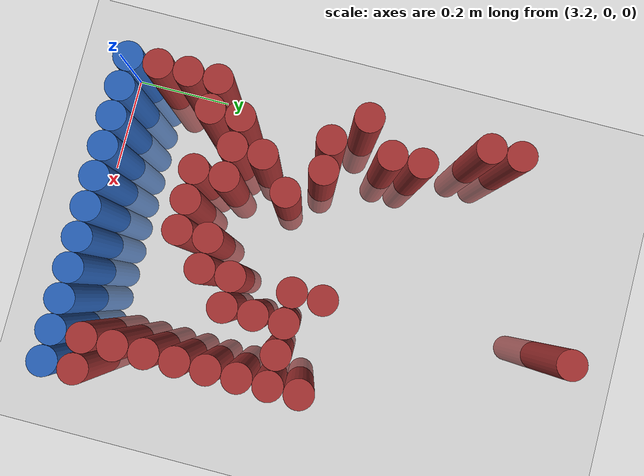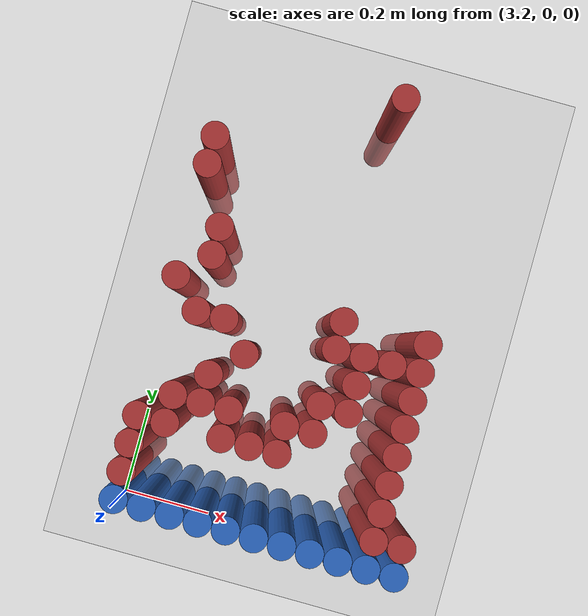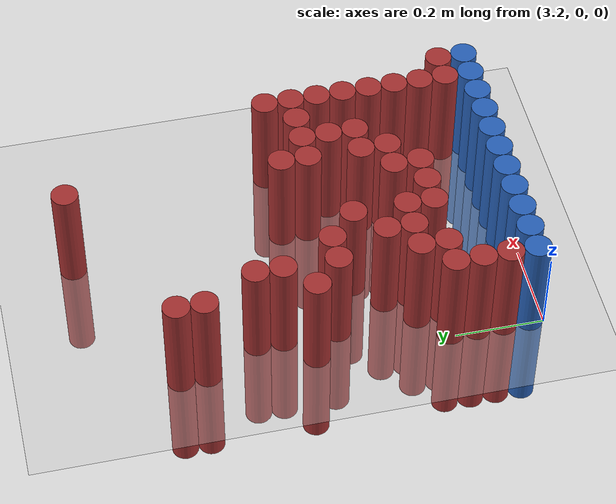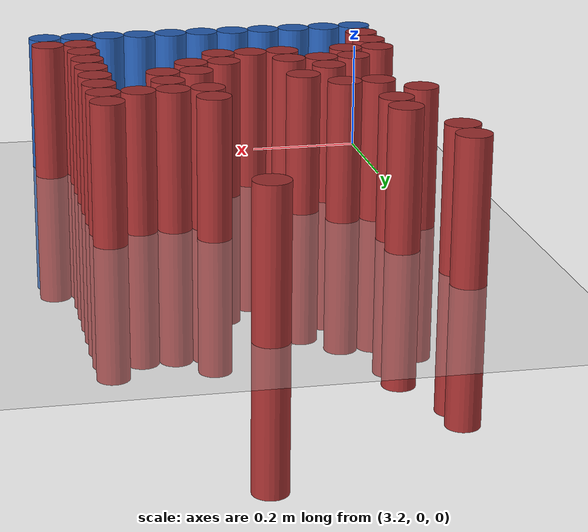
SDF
<sdf version="1.6">
 <world name="default">
  <model name="ground_plane">
   <static>1</static>
   <link name="link">
    <collision name="collision">
     <geometry><plane><normal>0 0 1</normal><size>100 100</size></plane></geometry>
     <surface><friction><ode><mu>100</mu><mu2>50</mu2></ode></friction></surface>
    </collision>
    <visual name="visual">
     <cast_shadows>0</cast_shadows>
     <geometry><plane><normal>0 0 1</normal><size>100 100</size></plane></geometry>
     <material>
      <script><uri>file://media/materials/scripts/gazebo.material</uri><name>Gazebo/Grey</name></script>
     </material>
    </visual>
   </link>
  </model>
  <model name="unit_cylinder_213">
   <static>1</static>
   <pose>3.570000 0.990000 0.000000 0.000000 0.000000 0.000000</pose>
   <link name="link">
    <inertial>
     <mass>1</mass>
     <inertia><ixx>0.145833</ixx><ixy>0</ixy><ixz>0</ixz><iyy>0.145833</iyy><iyz>0</iyz><izz>0.125</izz></inertia>
    </inertial>
    <collision name="collision">
     <geometry><cylinder><radius>0.030000</radius><length>0.5</length></cylinder></geometry>
    </collision>
    <visual name="visual">
     <geometry><cylinder><radius>0.030000</radius><length>0.5</length></cylinder></geometry>
     <material>
      <ambient>0.648000 0.192000 0.192000 1</ambient>
      <diffuse>0.648000 0.192000 0.192000 1</diffuse>
     </material>
     <material>
      <script><name>Gazebo/Grey</name><uri>file://media/materials/scripts/gazebo.material</uri></script>
     </material>
    </visual>
   </link>
  </model>
  <model name="unit_cylinder_217">
   <static>1</static>
   <pose>3.210000 0.810000 0.000000 0.000000 0.000000 0.000000</pose>
   <link name="link">
    <inertial>
     <mass>1</mass>
     <inertia><ixx>0.145833</ixx><ixy>0</ixy><ixz>0</ixz><iyy>0.145833</iyy><iyz>0</iyz><izz>0.125</izz></inertia>
    </inertial>
    <collision name="collision">
     <geometry><cylinder><radius>0.030000</radius><length>0.5</length></cylinder></geometry>
    </collision>
    <visual name="visual">
     <geometry><cylinder><radius>0.030000</radius><length>0.5</length></cylinder></geometry>
     <material>
      <ambient>0.648000 0.192000 0.192000 1</ambient>
      <diffuse>0.648000 0.192000 0.192000 1</diffuse>
     </material>
     <material>
      <script><name>Gazebo/Grey</name><uri>file://media/materials/scripts/gazebo.material</uri></script>
     </material>
    </visual>
   </link>
  </model>
  <model name="unit_cylinder_220">
   <static>1</static>
   <pose>3.210000 0.750000 0.000000 0.000000 0.000000 0.000000</pose>
   <link name="link">
    <inertial>
     <mass>1</mass>
     <inertia><ixx>0.145833</ixx><ixy>0</ixy><ixz>0</ixz><iyy>0.145833</iyy><iyz>0</iyz><izz>0.125</izz></inertia>
    </inertial>
    <collision name="collision">
     <geometry><cylinder><radius>0.030000</radius><length>0.5</length></cylinder></geometry>
    </collision>
    <visual name="visual">
     <geometry><cylinder><radius>0.030000</radius><length>0.5</length></cylinder></geometry>
     <material>
      <ambient>0.648000 0.192000 0.192000 1</ambient>
      <diffuse>0.648000 0.192000 0.192000 1</diffuse>
     </material>
     <material>
      <script><name>Gazebo/Grey</name><uri>file://media/materials/scripts/gazebo.material</uri></script>
     </material>
    </visual>
   </link>
  </model>
  <model name="unit_cylinder_235">
   <static>1</static>
   <pose>3.270000 0.630000 0.000000 0.000000 0.000000 0.000000</pose>
   <link name="link">
    <inertial>
     <mass>1</mass>
     <inertia><ixx>0.145833</ixx><ixy>0</ixy><ixz>0</ixz><iyy>0.145833</iyy><iyz>0</iyz><izz>0.125</izz></inertia>
    </inertial>
    <collision name="collision">
     <geometry><cylinder><radius>0.030000</radius><length>0.5</length></cylinder></geometry>
    </collision>
    <visual name="visual">
     <geometry><cylinder><radius>0.030000</radius><length>0.5</length></cylinder></geometry>
     <material>
      <ambient>0.648000 0.192000 0.192000 1</ambient>
      <diffuse>0.648000 0.192000 0.192000 1</diffuse>
     </material>
     <material>
      <script><name>Gazebo/Grey</name><uri>file://media/materials/scripts/gazebo.material</uri></script>
     </material>
    </visual>
   </link>
  </model>
  <model name="unit_cylinder_239">
   <static>1</static>
   <pose>3.270000 0.570000 0.000000 0.000000 0.000000 0.000000</pose>
   <link name="link">
    <inertial>
     <mass>1</mass>
     <inertia><ixx>0.145833</ixx><ixy>0</ixy><ixz>0</ixz><iyy>0.145833</iyy><iyz>0</iyz><izz>0.125</izz></inertia>
    </inertial>
    <collision name="collision">
     <geometry><cylinder><radius>0.030000</radius><length>0.5</length></cylinder></geometry>
    </collision>
    <visual name="visual">
     <geometry><cylinder><radius>0.030000</radius><length>0.5</length></cylinder></geometry>
     <material>
      <ambient>0.648000 0.192000 0.192000 1</ambient>
      <diffuse>0.648000 0.192000 0.192000 1</diffuse>
     </material>
     <material>
      <script><name>Gazebo/Grey</name><uri>file://media/materials/scripts/gazebo.material</uri></script>
     </material>
    </visual>
   </link>
  </model>
  <model name="unit_cylinder_249">
   <static>1</static>
   <pose>3.210000 0.510000 0.000000 0.000000 0.000000 0.000000</pose>
   <link name="link">
    <inertial>
     <mass>1</mass>
     <inertia><ixx>0.145833</ixx><ixy>0</ixy><ixz>0</ixz><iyy>0.145833</iyy><iyz>0</iyz><izz>0.125</izz></inertia>
    </inertial>
    <collision name="collision">
     <geometry><cylinder><radius>0.030000</radius><length>0.5</length></cylinder></geometry>
    </collision>
    <visual name="visual">
     <geometry><cylinder><radius>0.030000</radius><length>0.5</length></cylinder></geometry>
     <material>
      <ambient>0.648000 0.192000 0.192000 1</ambient>
      <diffuse>0.648000 0.192000 0.192000 1</diffuse>
     </material>
     <material>
      <script><name>Gazebo/Grey</name><uri>file://media/materials/scripts/gazebo.material</uri></script>
     </material>
    </visual>
   </link>
  </model>
  <model name="unit_cylinder_250">
   <static>1</static>
   <pose>3.570000 0.510000 0.000000 0.000000 0.000000 0.000000</pose>
   <link name="link">
    <inertial>
     <mass>1</mass>
     <inertia><ixx>0.145833</ixx><ixy>0</ixy><ixz>0</ixz><iyy>0.145833</iyy><iyz>0</iyz><izz>0.125</izz></inertia>
    </inertial>
    <collision name="collision">
     <geometry><cylinder><radius>0.030000</radius><length>0.5</length></cylinder></geometry>
    </collision>
    <visual name="visual">
     <geometry><cylinder><radius>0.030000</radius><length>0.5</length></cylinder></geometry>
     <material>
      <ambient>0.648000 0.192000 0.192000 1</ambient>
      <diffuse>0.648000 0.192000 0.192000 1</diffuse>
     </material>
     <material>
      <script><name>Gazebo/Grey</name><uri>file://media/materials/scripts/gazebo.material</uri></script>
     </material>
    </visual>
   </link>
  </model>
  <model name="unit_cylinder_251">
   <static>1</static>
   <pose>3.750000 0.510000 0.000000 0.000000 0.000000 0.000000</pose>
   <link name="link">
    <inertial>
     <mass>1</mass>
     <inertia><ixx>0.145833</ixx><ixy>0</ixy><ixz>0</ixz><iyy>0.145833</iyy><iyz>0</iyz><izz>0.125</izz></inertia>
    </inertial>
    <collision name="collision">
     <geometry><cylinder><radius>0.030000</radius><length>0.5</length></cylinder></geometry>
    </collision>
    <visual name="visual">
     <geometry><cylinder><radius>0.030000</radius><length>0.5</length></cylinder></geometry>
     <material>
      <ambient>0.648000 0.192000 0.192000 1</ambient>
      <diffuse>0.648000 0.192000 0.192000 1</diffuse>
     </material>
     <material>
      <script><name>Gazebo/Grey</name><uri>file://media/materials/scripts/gazebo.material</uri></script>
     </material>
    </visual>
   </link>
  </model>
  <model name="unit_cylinder_260">
   <static>1</static>
   <pose>3.270000 0.450000 0.000000 0.000000 0.000000 0.000000</pose>
   <link name="link">
    <inertial>
     <mass>1</mass>
     <inertia><ixx>0.145833</ixx><ixy>0</ixy><ixz>0</ixz><iyy>0.145833</iyy><iyz>0</iyz><izz>0.125</izz></inertia>
    </inertial>
    <collision name="collision">
     <geometry><cylinder><radius>0.030000</radius><length>0.5</length></cylinder></geometry>
    </collision>
    <visual name="visual">
     <geometry><cylinder><radius>0.030000</radius><length>0.5</length></cylinder></geometry>
     <material>
      <ambient>0.648000 0.192000 0.192000 1</ambient>
      <diffuse>0.648000 0.192000 0.192000 1</diffuse>
     </material>
     <material>
      <script><name>Gazebo/Grey</name><uri>file://media/materials/scripts/gazebo.material</uri></script>
     </material>
    </visual>
   </link>
  </model>
  <model name="unit_cylinder_261">
   <static>1</static>
   <pose>3.330000 0.450000 0.000000 0.000000 0.000000 0.000000</pose>
   <link name="link">
    <inertial>
     <mass>1</mass>
     <inertia><ixx>0.145833</ixx><ixy>0</ixy><ixz>0</ixz><iyy>0.145833</iyy><iyz>0</iyz><izz>0.125</izz></inertia>
    </inertial>
    <collision name="collision">
     <geometry><cylinder><radius>0.030000</radius><length>0.5</length></cylinder></geometry>
    </collision>
    <visual name="visual">
     <geometry><cylinder><radius>0.030000</radius><length>0.5</length></cylinder></geometry>
     <material>
      <ambient>0.648000 0.192000 0.192000 1</ambient>
      <diffuse>0.648000 0.192000 0.192000 1</diffuse>
     </material>
     <material>
      <script><name>Gazebo/Grey</name><uri>file://media/materials/scripts/gazebo.material</uri></script>
     </material>
    </visual>
   </link>
  </model>
  <model name="unit_cylinder_262">
   <static>1</static>
   <pose>3.570000 0.450000 0.000000 0.000000 0.000000 0.000000</pose>
   <link name="link">
    <inertial>
     <mass>1</mass>
     <inertia><ixx>0.145833</ixx><ixy>0</ixy><ixz>0</ixz><iyy>0.145833</iyy><iyz>0</iyz><izz>0.125</izz></inertia>
    </inertial>
    <collision name="collision">
     <geometry><cylinder><radius>0.030000</radius><length>0.5</length></cylinder></geometry>
    </collision>
    <visual name="visual">
     <geometry><cylinder><radius>0.030000</radius><length>0.5</length></cylinder></geometry>
     <material>
      <ambient>0.648000 0.192000 0.192000 1</ambient>
      <diffuse>0.648000 0.192000 0.192000 1</diffuse>
     </material>
     <material>
      <script><name>Gazebo/Grey</name><uri>file://media/materials/scripts/gazebo.material</uri></script>
     </material>
    </visual>
   </link>
  </model>
  <model name="unit_cylinder_263">
   <static>1</static>
   <pose>3.630000 0.450000 0.000000 0.000000 0.000000 0.000000</pose>
   <link name="link">
    <inertial>
     <mass>1</mass>
     <inertia><ixx>0.145833</ixx><ixy>0</ixy><ixz>0</ixz><iyy>0.145833</iyy><iyz>0</iyz><izz>0.125</izz></inertia>
    </inertial>
    <collision name="collision">
     <geometry><cylinder><radius>0.030000</radius><length>0.5</length></cylinder></geometry>
    </collision>
    <visual name="visual">
     <geometry><cylinder><radius>0.030000</radius><length>0.5</length></cylinder></geometry>
     <material>
      <ambient>0.648000 0.192000 0.192000 1</ambient>
      <diffuse>0.648000 0.192000 0.192000 1</diffuse>
     </material>
     <material>
      <script><name>Gazebo/Grey</name><uri>file://media/materials/scripts/gazebo.material</uri></script>
     </material>
    </visual>
   </link>
  </model>
  <model name="unit_cylinder_264">
   <static>1</static>
   <pose>3.690000 0.450000 0.000000 0.000000 0.000000 0.000000</pose>
   <link name="link">
    <inertial>
     <mass>1</mass>
     <inertia><ixx>0.145833</ixx><ixy>0</ixy><ixz>0</ixz><iyy>0.145833</iyy><iyz>0</iyz><izz>0.125</izz></inertia>
    </inertial>
    <collision name="collision">
     <geometry><cylinder><radius>0.030000</radius><length>0.5</length></cylinder></geometry>
    </collision>
    <visual name="visual">
     <geometry><cylinder><radius>0.030000</radius><length>0.5</length></cylinder></geometry>
     <material>
      <ambient>0.648000 0.192000 0.192000 1</ambient>
      <diffuse>0.648000 0.192000 0.192000 1</diffuse>
     </material>
     <material>
      <script><name>Gazebo/Grey</name><uri>file://media/materials/scripts/gazebo.material</uri></script>
     </material>
    </visual>
   </link>
  </model>
  <model name="unit_cylinder_265">
   <static>1</static>
   <pose>3.750000 0.450000 0.000000 0.000000 0.000000 0.000000</pose>
   <link name="link">
    <inertial>
     <mass>1</mass>
     <inertia><ixx>0.145833</ixx><ixy>0</ixy><ixz>0</ixz><iyy>0.145833</iyy><iyz>0</iyz><izz>0.125</izz></inertia>
    </inertial>
    <collision name="collision">
     <geometry><cylinder><radius>0.030000</radius><length>0.5</length></cylinder></geometry>
    </collision>
    <visual name="visual">
     <geometry><cylinder><radius>0.030000</radius><length>0.5</length></cylinder></geometry>
     <material>
      <ambient>0.648000 0.192000 0.192000 1</ambient>
      <diffuse>0.648000 0.192000 0.192000 1</diffuse>
     </material>
     <material>
      <script><name>Gazebo/Grey</name><uri>file://media/materials/scripts/gazebo.material</uri></script>
     </material>
    </visual>
   </link>
  </model>
  <model name="unit_cylinder_269">
   <static>1</static>
   <pose>3.390000 0.390000 0.000000 0.000000 0.000000 0.000000</pose>
   <link name="link">
    <inertial>
     <mass>1</mass>
     <inertia><ixx>0.145833</ixx><ixy>0</ixy><ixz>0</ixz><iyy>0.145833</iyy><iyz>0</iyz><izz>0.125</izz></inertia>
    </inertial>
    <collision name="collision">
     <geometry><cylinder><radius>0.030000</radius><length>0.5</length></cylinder></geometry>
    </collision>
    <visual name="visual">
     <geometry><cylinder><radius>0.030000</radius><length>0.5</length></cylinder></geometry>
     <material>
      <ambient>0.648000 0.192000 0.192000 1</ambient>
      <diffuse>0.648000 0.192000 0.192000 1</diffuse>
     </material>
     <material>
      <script><name>Gazebo/Grey</name><uri>file://media/materials/scripts/gazebo.material</uri></script>
     </material>
    </visual>
   </link>
  </model>
  <model name="unit_cylinder_270">
   <static>1</static>
   <pose>3.630000 0.390000 0.000000 0.000000 0.000000 0.000000</pose>
   <link name="link">
    <inertial>
     <mass>1</mass>
     <inertia><ixx>0.145833</ixx><ixy>0</ixy><ixz>0</ixz><iyy>0.145833</iyy><iyz>0</iyz><izz>0.125</izz></inertia>
    </inertial>
    <collision name="collision">
     <geometry><cylinder><radius>0.030000</radius><length>0.5</length></cylinder></geometry>
    </collision>
    <visual name="visual">
     <geometry><cylinder><radius>0.030000</radius><length>0.5</length></cylinder></geometry>
     <material>
      <ambient>0.648000 0.192000 0.192000 1</ambient>
      <diffuse>0.648000 0.192000 0.192000 1</diffuse>
     </material>
     <material>
      <script><name>Gazebo/Grey</name><uri>file://media/materials/scripts/gazebo.material</uri></script>
     </material>
    </visual>
   </link>
  </model>
  <model name="unit_cylinder_271">
   <static>1</static>
   <pose>3.750000 0.390000 0.000000 0.000000 0.000000 0.000000</pose>
   <link name="link">
    <inertial>
     <mass>1</mass>
     <inertia><ixx>0.145833</ixx><ixy>0</ixy><ixz>0</ixz><iyy>0.145833</iyy><iyz>0</iyz><izz>0.125</izz></inertia>
    </inertial>
    <collision name="collision">
     <geometry><cylinder><radius>0.030000</radius><length>0.5</length></cylinder></geometry>
    </collision>
    <visual name="visual">
     <geometry><cylinder><radius>0.030000</radius><length>0.5</length></cylinder></geometry>
     <material>
      <ambient>0.648000 0.192000 0.192000 1</ambient>
      <diffuse>0.648000 0.192000 0.192000 1</diffuse>
     </material>
     <material>
      <script><name>Gazebo/Grey</name><uri>file://media/materials/scripts/gazebo.material</uri></script>
     </material>
    </visual>
   </link>
  </model>
  <model name="unit_cylinder_274">
   <static>1</static>
   <pose>3.330000 0.330000 0.000000 0.000000 0.000000 0.000000</pose>
   <link name="link">
    <inertial>
     <mass>1</mass>
     <inertia><ixx>0.145833</ixx><ixy>0</ixy><ixz>0</ixz><iyy>0.145833</iyy><iyz>0</iyz><izz>0.125</izz></inertia>
    </inertial>
    <collision name="collision">
     <geometry><cylinder><radius>0.030000</radius><length>0.5</length></cylinder></geometry>
    </collision>
    <visual name="visual">
     <geometry><cylinder><radius>0.030000</radius><length>0.5</length></cylinder></geometry>
     <material>
      <ambient>0.648000 0.192000 0.192000 1</ambient>
      <diffuse>0.648000 0.192000 0.192000 1</diffuse>
     </material>
     <material>
      <script><name>Gazebo/Grey</name><uri>file://media/materials/scripts/gazebo.material</uri></script>
     </material>
    </visual>
   </link>
  </model>
  <model name="unit_cylinder_275">
   <static>1</static>
   <pose>3.570000 0.330000 0.000000 0.000000 0.000000 0.000000</pose>
   <link name="link">
    <inertial>
     <mass>1</mass>
     <inertia><ixx>0.145833</ixx><ixy>0</ixy><ixz>0</ixz><iyy>0.145833</iyy><iyz>0</iyz><izz>0.125</izz></inertia>
    </inertial>
    <collision name="collision">
     <geometry><cylinder><radius>0.030000</radius><length>0.5</length></cylinder></geometry>
    </collision>
    <visual name="visual">
     <geometry><cylinder><radius>0.030000</radius><length>0.5</length></cylinder></geometry>
     <material>
      <ambient>0.648000 0.192000 0.192000 1</ambient>
      <diffuse>0.648000 0.192000 0.192000 1</diffuse>
     </material>
     <material>
      <script><name>Gazebo/Grey</name><uri>file://media/materials/scripts/gazebo.material</uri></script>
     </material>
    </visual>
   </link>
  </model>
  <model name="unit_cylinder_276">
   <static>1</static>
   <pose>3.630000 0.330000 0.000000 0.000000 0.000000 0.000000</pose>
   <link name="link">
    <inertial>
     <mass>1</mass>
     <inertia><ixx>0.145833</ixx><ixy>0</ixy><ixz>0</ixz><iyy>0.145833</iyy><iyz>0</iyz><izz>0.125</izz></inertia>
    </inertial>
    <collision name="collision">
     <geometry><cylinder><radius>0.030000</radius><length>0.5</length></cylinder></geometry>
    </collision>
    <visual name="visual">
     <geometry><cylinder><radius>0.030000</radius><length>0.5</length></cylinder></geometry>
     <material>
      <ambient>0.648000 0.192000 0.192000 1</ambient>
      <diffuse>0.648000 0.192000 0.192000 1</diffuse>
     </material>
     <material>
      <script><name>Gazebo/Grey</name><uri>file://media/materials/scripts/gazebo.material</uri></script>
     </material>
    </visual>
   </link>
  </model>
  <model name="unit_cylinder_277">
   <static>1</static>
   <pose>3.750000 0.330000 0.000000 0.000000 0.000000 0.000000</pose>
   <link name="link">
    <inertial>
     <mass>1</mass>
     <inertia><ixx>0.145833</ixx><ixy>0</ixy><ixz>0</ixz><iyy>0.145833</iyy><iyz>0</iyz><izz>0.125</izz></inertia>
    </inertial>
    <collision name="collision">
     <geometry><cylinder><radius>0.030000</radius><length>0.5</length></cylinder></geometry>
    </collision>
    <visual name="visual">
     <geometry><cylinder><radius>0.030000</radius><length>0.5</length></cylinder></geometry>
     <material>
      <ambient>0.648000 0.192000 0.192000 1</ambient>
      <diffuse>0.648000 0.192000 0.192000 1</diffuse>
     </material>
     <material>
      <script><name>Gazebo/Grey</name><uri>file://media/materials/scripts/gazebo.material</uri></script>
     </material>
    </visual>
   </link>
  </model>
  <model name="unit_cylinder_280">
   <static>1</static>
   <pose>3.270000 0.270000 0.000000 0.000000 0.000000 0.000000</pose>
   <link name="link">
    <inertial>
     <mass>1</mass>
     <inertia><ixx>0.145833</ixx><ixy>0</ixy><ixz>0</ixz><iyy>0.145833</iyy><iyz>0</iyz><izz>0.125</izz></inertia>
    </inertial>
    <collision name="collision">
     <geometry><cylinder><radius>0.030000</radius><length>0.5</length></cylinder></geometry>
    </collision>
    <visual name="visual">
     <geometry><cylinder><radius>0.030000</radius><length>0.5</length></cylinder></geometry>
     <material>
      <ambient>0.648000 0.192000 0.192000 1</ambient>
      <diffuse>0.648000 0.192000 0.192000 1</diffuse>
     </material>
     <material>
      <script><name>Gazebo/Grey</name><uri>file://media/materials/scripts/gazebo.material</uri></script>
     </material>
    </visual>
   </link>
  </model>
  <model name="unit_cylinder_281">
   <static>1</static>
   <pose>3.330000 0.270000 0.000000 0.000000 0.000000 0.000000</pose>
   <link name="link">
    <inertial>
     <mass>1</mass>
     <inertia><ixx>0.145833</ixx><ixy>0</ixy><ixz>0</ixz><iyy>0.145833</iyy><iyz>0</iyz><izz>0.125</izz></inertia>
    </inertial>
    <collision name="collision">
     <geometry><cylinder><radius>0.030000</radius><length>0.5</length></cylinder></geometry>
    </collision>
    <visual name="visual">
     <geometry><cylinder><radius>0.030000</radius><length>0.5</length></cylinder></geometry>
     <material>
      <ambient>0.648000 0.192000 0.192000 1</ambient>
      <diffuse>0.648000 0.192000 0.192000 1</diffuse>
     </material>
     <material>
      <script><name>Gazebo/Grey</name><uri>file://media/materials/scripts/gazebo.material</uri></script>
     </material>
    </visual>
   </link>
  </model>
  <model name="unit_cylinder_282">
   <static>1</static>
   <pose>3.390000 0.270000 0.000000 0.000000 0.000000 0.000000</pose>
   <link name="link">
    <inertial>
     <mass>1</mass>
     <inertia><ixx>0.145833</ixx><ixy>0</ixy><ixz>0</ixz><iyy>0.145833</iyy><iyz>0</iyz><izz>0.125</izz></inertia>
    </inertial>
    <collision name="collision">
     <geometry><cylinder><radius>0.030000</radius><length>0.5</length></cylinder></geometry>
    </collision>
    <visual name="visual">
     <geometry><cylinder><radius>0.030000</radius><length>0.5</length></cylinder></geometry>
     <material>
      <ambient>0.648000 0.192000 0.192000 1</ambient>
      <diffuse>0.648000 0.192000 0.192000 1</diffuse>
     </material>
     <material>
      <script><name>Gazebo/Grey</name><uri>file://media/materials/scripts/gazebo.material</uri></script>
     </material>
    </visual>
   </link>
  </model>
  <model name="unit_cylinder_283">
   <static>1</static>
   <pose>3.510000 0.270000 0.000000 0.000000 0.000000 0.000000</pose>
   <link name="link">
    <inertial>
     <mass>1</mass>
     <inertia><ixx>0.145833</ixx><ixy>0</ixy><ixz>0</ixz><iyy>0.145833</iyy><iyz>0</iyz><izz>0.125</izz></inertia>
    </inertial>
    <collision name="collision">
     <geometry><cylinder><radius>0.030000</radius><length>0.5</length></cylinder></geometry>
    </collision>
    <visual name="visual">
     <geometry><cylinder><radius>0.030000</radius><length>0.5</length></cylinder></geometry>
     <material>
      <ambient>0.648000 0.192000 0.192000 1</ambient>
      <diffuse>0.648000 0.192000 0.192000 1</diffuse>
     </material>
     <material>
      <script><name>Gazebo/Grey</name><uri>file://media/materials/scripts/gazebo.material</uri></script>
     </material>
    </visual>
   </link>
  </model>
  <model name="unit_cylinder_284">
   <static>1</static>
   <pose>3.570000 0.270000 0.000000 0.000000 0.000000 0.000000</pose>
   <link name="link">
    <inertial>
     <mass>1</mass>
     <inertia><ixx>0.145833</ixx><ixy>0</ixy><ixz>0</ixz><iyy>0.145833</iyy><iyz>0</iyz><izz>0.125</izz></inertia>
    </inertial>
    <collision name="collision">
     <geometry><cylinder><radius>0.030000</radius><length>0.5</length></cylinder></geometry>
    </collision>
    <visual name="visual">
     <geometry><cylinder><radius>0.030000</radius><length>0.5</length></cylinder></geometry>
     <material>
      <ambient>0.648000 0.192000 0.192000 1</ambient>
      <diffuse>0.648000 0.192000 0.192000 1</diffuse>
     </material>
     <material>
      <script><name>Gazebo/Grey</name><uri>file://media/materials/scripts/gazebo.material</uri></script>
     </material>
    </visual>
   </link>
  </model>
  <model name="unit_cylinder_285">
   <static>1</static>
   <pose>3.750000 0.270000 0.000000 0.000000 0.000000 0.000000</pose>
   <link name="link">
    <inertial>
     <mass>1</mass>
     <inertia><ixx>0.145833</ixx><ixy>0</ixy><ixz>0</ixz><iyy>0.145833</iyy><iyz>0</iyz><izz>0.125</izz></inertia>
    </inertial>
    <collision name="collision">
     <geometry><cylinder><radius>0.030000</radius><length>0.5</length></cylinder></geometry>
    </collision>
    <visual name="visual">
     <geometry><cylinder><radius>0.030000</radius><length>0.5</length></cylinder></geometry>
     <material>
      <ambient>0.648000 0.192000 0.192000 1</ambient>
      <diffuse>0.648000 0.192000 0.192000 1</diffuse>
     </material>
     <material>
      <script><name>Gazebo/Grey</name><uri>file://media/materials/scripts/gazebo.material</uri></script>
     </material>
    </visual>
   </link>
  </model>
  <model name="unit_cylinder_286">
   <static>1</static>
   <pose>3.210000 0.210000 0.000000 0.000000 0.000000 0.000000</pose>
   <link name="link">
    <inertial>
     <mass>1</mass>
     <inertia><ixx>0.145833</ixx><ixy>0</ixy><ixz>0</ixz><iyy>0.145833</iyy><iyz>0</iyz><izz>0.125</izz></inertia>
    </inertial>
    <collision name="collision">
     <geometry><cylinder><radius>0.030000</radius><length>0.5</length></cylinder></geometry>
    </collision>
    <visual name="visual">
     <geometry><cylinder><radius>0.030000</radius><length>0.5</length></cylinder></geometry>
     <material>
      <ambient>0.648000 0.192000 0.192000 1</ambient>
      <diffuse>0.648000 0.192000 0.192000 1</diffuse>
     </material>
     <material>
      <script><name>Gazebo/Grey</name><uri>file://media/materials/scripts/gazebo.material</uri></script>
     </material>
    </visual>
   </link>
  </model>
  <model name="unit_cylinder_287">
   <static>1</static>
   <pose>3.270000 0.210000 0.000000 0.000000 0.000000 0.000000</pose>
   <link name="link">
    <inertial>
     <mass>1</mass>
     <inertia><ixx>0.145833</ixx><ixy>0</ixy><ixz>0</ixz><iyy>0.145833</iyy><iyz>0</iyz><izz>0.125</izz></inertia>
    </inertial>
    <collision name="collision">
     <geometry><cylinder><radius>0.030000</radius><length>0.5</length></cylinder></geometry>
    </collision>
    <visual name="visual">
     <geometry><cylinder><radius>0.030000</radius><length>0.5</length></cylinder></geometry>
     <material>
      <ambient>0.648000 0.192000 0.192000 1</ambient>
      <diffuse>0.648000 0.192000 0.192000 1</diffuse>
     </material>
     <material>
      <script><name>Gazebo/Grey</name><uri>file://media/materials/scripts/gazebo.material</uri></script>
     </material>
    </visual>
   </link>
  </model>
  <model name="unit_cylinder_288">
   <static>1</static>
   <pose>3.390000 0.210000 0.000000 0.000000 0.000000 0.000000</pose>
   <link name="link">
    <inertial>
     <mass>1</mass>
     <inertia><ixx>0.145833</ixx><ixy>0</ixy><ixz>0</ixz><iyy>0.145833</iyy><iyz>0</iyz><izz>0.125</izz></inertia>
    </inertial>
    <collision name="collision">
     <geometry><cylinder><radius>0.030000</radius><length>0.5</length></cylinder></geometry>
    </collision>
    <visual name="visual">
     <geometry><cylinder><radius>0.030000</radius><length>0.5</length></cylinder></geometry>
     <material>
      <ambient>0.648000 0.192000 0.192000 1</ambient>
      <diffuse>0.648000 0.192000 0.192000 1</diffuse>
     </material>
     <material>
      <script><name>Gazebo/Grey</name><uri>file://media/materials/scripts/gazebo.material</uri></script>
     </material>
    </visual>
   </link>
  </model>
  <model name="unit_cylinder_289">
   <static>1</static>
   <pose>3.450000 0.210000 0.000000 0.000000 0.000000 0.000000</pose>
   <link name="link">
    <inertial>
     <mass>1</mass>
     <inertia><ixx>0.145833</ixx><ixy>0</ixy><ixz>0</ixz><iyy>0.145833</iyy><iyz>0</iyz><izz>0.125</izz></inertia>
    </inertial>
    <collision name="collision">
     <geometry><cylinder><radius>0.030000</radius><length>0.5</length></cylinder></geometry>
    </collision>
    <visual name="visual">
     <geometry><cylinder><radius>0.030000</radius><length>0.5</length></cylinder></geometry>
     <material>
      <ambient>0.648000 0.192000 0.192000 1</ambient>
      <diffuse>0.648000 0.192000 0.192000 1</diffuse>
     </material>
     <material>
      <script><name>Gazebo/Grey</name><uri>file://media/materials/scripts/gazebo.material</uri></script>
     </material>
    </visual>
   </link>
  </model>
  <model name="unit_cylinder_290">
   <static>1</static>
   <pose>3.510000 0.210000 0.000000 0.000000 0.000000 0.000000</pose>
   <link name="link">
    <inertial>
     <mass>1</mass>
     <inertia><ixx>0.145833</ixx><ixy>0</ixy><ixz>0</ixz><iyy>0.145833</iyy><iyz>0</iyz><izz>0.125</izz></inertia>
    </inertial>
    <collision name="collision">
     <geometry><cylinder><radius>0.030000</radius><length>0.5</length></cylinder></geometry>
    </collision>
    <visual name="visual">
     <geometry><cylinder><radius>0.030000</radius><length>0.5</length></cylinder></geometry>
     <material>
      <ambient>0.648000 0.192000 0.192000 1</ambient>
      <diffuse>0.648000 0.192000 0.192000 1</diffuse>
     </material>
     <material>
      <script><name>Gazebo/Grey</name><uri>file://media/materials/scripts/gazebo.material</uri></script>
     </material>
    </visual>
   </link>
  </model>
  <model name="unit_cylinder_291">
   <static>1</static>
   <pose>3.750000 0.210000 0.000000 0.000000 0.000000 0.000000</pose>
   <link name="link">
    <inertial>
     <mass>1</mass>
     <inertia><ixx>0.145833</ixx><ixy>0</ixy><ixz>0</ixz><iyy>0.145833</iyy><iyz>0</iyz><izz>0.125</izz></inertia>
    </inertial>
    <collision name="collision">
     <geometry><cylinder><radius>0.030000</radius><length>0.5</length></cylinder></geometry>
    </collision>
    <visual name="visual">
     <geometry><cylinder><radius>0.030000</radius><length>0.5</length></cylinder></geometry>
     <material>
      <ambient>0.648000 0.192000 0.192000 1</ambient>
      <diffuse>0.648000 0.192000 0.192000 1</diffuse>
     </material>
     <material>
      <script><name>Gazebo/Grey</name><uri>file://media/materials/scripts/gazebo.material</uri></script>
     </material>
    </visual>
   </link>
  </model>
  <model name="unit_cylinder_293">
   <static>1</static>
   <pose>3.210000 0.150000 0.000000 0.000000 0.000000 0.000000</pose>
   <link name="link">
    <inertial>
     <mass>1</mass>
     <inertia><ixx>0.145833</ixx><ixy>0</ixy><ixz>0</ixz><iyy>0.145833</iyy><iyz>0</iyz><izz>0.125</izz></inertia>
    </inertial>
    <collision name="collision">
     <geometry><cylinder><radius>0.030000</radius><length>0.5</length></cylinder></geometry>
    </collision>
    <visual name="visual">
     <geometry><cylinder><radius>0.030000</radius><length>0.5</length></cylinder></geometry>
     <material>
      <ambient>0.648000 0.192000 0.192000 1</ambient>
      <diffuse>0.648000 0.192000 0.192000 1</diffuse>
     </material>
     <material>
      <script><name>Gazebo/Grey</name><uri>file://media/materials/scripts/gazebo.material</uri></script>
     </material>
    </visual>
   </link>
  </model>
  <model name="unit_cylinder_294">
   <static>1</static>
   <pose>3.750000 0.150000 0.000000 0.000000 0.000000 0.000000</pose>
   <link name="link">
    <inertial>
     <mass>1</mass>
     <inertia><ixx>0.145833</ixx><ixy>0</ixy><ixz>0</ixz><iyy>0.145833</iyy><iyz>0</iyz><izz>0.125</izz></inertia>
    </inertial>
    <collision name="collision">
     <geometry><cylinder><radius>0.030000</radius><length>0.5</length></cylinder></geometry>
    </collision>
    <visual name="visual">
     <geometry><cylinder><radius>0.030000</radius><length>0.5</length></cylinder></geometry>
     <material>
      <ambient>0.648000 0.192000 0.192000 1</ambient>
      <diffuse>0.648000 0.192000 0.192000 1</diffuse>
     </material>
     <material>
      <script><name>Gazebo/Grey</name><uri>file://media/materials/scripts/gazebo.material</uri></script>
     </material>
    </visual>
   </link>
  </model>
  <model name="unit_cylinder_307">
   <static>1</static>
   <pose>3.210000 0.090000 0.000000 0.000000 0.000000 0.000000</pose>
   <link name="link">
    <inertial>
     <mass>1</mass>
     <inertia><ixx>0.145833</ixx><ixy>0</ixy><ixz>0</ixz><iyy>0.145833</iyy><iyz>0</iyz><izz>0.125</izz></inertia>
    </inertial>
    <collision name="collision">
     <geometry><cylinder><radius>0.030000</radius><length>0.5</length></cylinder></geometry>
    </collision>
    <visual name="visual">
     <geometry><cylinder><radius>0.030000</radius><length>0.5</length></cylinder></geometry>
     <material>
      <ambient>0.648000 0.192000 0.192000 1</ambient>
      <diffuse>0.648000 0.192000 0.192000 1</diffuse>
     </material>
     <material>
      <script><name>Gazebo/Grey</name><uri>file://media/materials/scripts/gazebo.material</uri></script>
     </material>
    </visual>
   </link>
  </model>
  <model name="unit_cylinder_308">
   <static>1</static>
   <pose>3.750000 0.090000 0.000000 0.000000 0.000000 0.000000</pose>
   <link name="link">
    <inertial>
     <mass>1</mass>
     <inertia><ixx>0.145833</ixx><ixy>0</ixy><ixz>0</ixz><iyy>0.145833</iyy><iyz>0</iyz><izz>0.125</izz></inertia>
    </inertial>
    <collision name="collision">
     <geometry><cylinder><radius>0.030000</radius><length>0.5</length></cylinder></geometry>
    </collision>
    <visual name="visual">
     <geometry><cylinder><radius>0.030000</radius><length>0.5</length></cylinder></geometry>
     <material>
      <ambient>0.648000 0.192000 0.192000 1</ambient>
      <diffuse>0.648000 0.192000 0.192000 1</diffuse>
     </material>
     <material>
      <script><name>Gazebo/Grey</name><uri>file://media/materials/scripts/gazebo.material</uri></script>
     </material>
    </visual>
   </link>
  </model>
  <model name="unit_cylinder_309">
   <static>1</static>
   <pose>3.810000 0.090000 0.000000 0.000000 0.000000 0.000000</pose>
   <link name="link">
    <inertial>
     <mass>1</mass>
     <inertia><ixx>0.145833</ixx><ixy>0</ixy><ixz>0</ixz><iyy>0.145833</iyy><iyz>0</iyz><izz>0.125</izz></inertia>
    </inertial>
    <collision name="collision">
     <geometry><cylinder><radius>0.030000</radius><length>0.5</length></cylinder></geometry>
    </collision>
    <visual name="visual">
     <geometry><cylinder><radius>0.030000</radius><length>0.5</length></cylinder></geometry>
     <material>
      <ambient>0.648000 0.192000 0.192000 1</ambient>
      <diffuse>0.648000 0.192000 0.192000 1</diffuse>
     </material>
     <material>
      <script><name>Gazebo/Grey</name><uri>file://media/materials/scripts/gazebo.material</uri></script>
     </material>
    </visual>
   </link>
  </model>
  <model name="unit_cylinder_329">
   <static>1</static>
   <pose>3.210000 0.030000 0.000000 0.000000 0.000000 0.000000</pose>
   <link name="link">
    <inertial>
     <mass>1</mass>
     <inertia><ixx>0.145833</ixx><ixy>0</ixy><ixz>0</ixz><iyy>0.145833</iyy><iyz>0</iyz><izz>0.125</izz></inertia>
    </inertial>
    <collision name="collision">
     <geometry><cylinder><radius>0.030000</radius><length>0.5</length></cylinder></geometry>
    </collision>
    <visual name="visual">
     <geometry><cylinder><radius>0.030000</radius><length>0.5</length></cylinder></geometry>
     <material>
      <ambient>0.152000 0.379000 0.720000 1</ambient>
      <diffuse>0.152000 0.379000 0.720000 1</diffuse>
     </material>
     <material>
      <script><name>Gazebo/Grey</name><uri>file://media/materials/scripts/gazebo.material</uri></script>
     </material>
    </visual>
   </link>
  </model>
  <model name="unit_cylinder_330">
   <static>1</static>
   <pose>3.270000 0.030000 0.000000 0.000000 0.000000 0.000000</pose>
   <link name="link">
    <inertial>
     <mass>1</mass>
     <inertia><ixx>0.145833</ixx><ixy>0</ixy><ixz>0</ixz><iyy>0.145833</iyy><iyz>0</iyz><izz>0.125</izz></inertia>
    </inertial>
    <collision name="collision">
     <geometry><cylinder><radius>0.030000</radius><length>0.5</length></cylinder></geometry>
    </collision>
    <visual name="visual">
     <geometry><cylinder><radius>0.030000</radius><length>0.5</length></cylinder></geometry>
     <material>
      <ambient>0.152000 0.379000 0.720000 1</ambient>
      <diffuse>0.152000 0.379000 0.720000 1</diffuse>
     </material>
     <material>
      <script><name>Gazebo/Grey</name><uri>file://media/materials/scripts/gazebo.material</uri></script>
     </material>
    </visual>
   </link>
  </model>
  <model name="unit_cylinder_331">
   <static>1</static>
   <pose>3.330000 0.030000 0.000000 0.000000 0.000000 0.000000</pose>
   <link name="link">
    <inertial>
     <mass>1</mass>
     <inertia><ixx>0.145833</ixx><ixy>0</ixy><ixz>0</ixz><iyy>0.145833</iyy><iyz>0</iyz><izz>0.125</izz></inertia>
    </inertial>
    <collision name="collision">
     <geometry><cylinder><radius>0.030000</radius><length>0.5</length></cylinder></geometry>
    </collision>
    <visual name="visual">
     <geometry><cylinder><radius>0.030000</radius><length>0.5</length></cylinder></geometry>
     <material>
      <ambient>0.152000 0.379000 0.720000 1</ambient>
      <diffuse>0.152000 0.379000 0.720000 1</diffuse>
     </material>
     <material>
      <script><name>Gazebo/Grey</name><uri>file://media/materials/scripts/gazebo.material</uri></script>
     </material>
    </visual>
   </link>
  </model>
  <model name="unit_cylinder_332">
   <static>1</static>
   <pose>3.390000 0.030000 0.000000 0.000000 0.000000 0.000000</pose>
   <link name="link">
    <inertial>
     <mass>1</mass>
     <inertia><ixx>0.145833</ixx><ixy>0</ixy><ixz>0</ixz><iyy>0.145833</iyy><iyz>0</iyz><izz>0.125</izz></inertia>
    </inertial>
    <collision name="collision">
     <geometry><cylinder><radius>0.030000</radius><length>0.5</length></cylinder></geometry>
    </collision>
    <visual name="visual">
     <geometry><cylinder><radius>0.030000</radius><length>0.5</length></cylinder></geometry>
     <material>
      <ambient>0.152000 0.379000 0.720000 1</ambient>
      <diffuse>0.152000 0.379000 0.720000 1</diffuse>
     </material>
     <material>
      <script><name>Gazebo/Grey</name><uri>file://media/materials/scripts/gazebo.material</uri></script>
     </material>
    </visual>
   </link>
  </model>
  <model name="unit_cylinder_333">
   <static>1</static>
   <pose>3.450000 0.030000 0.000000 0.000000 0.000000 0.000000</pose>
   <link name="link">
    <inertial>
     <mass>1</mass>
     <inertia><ixx>0.145833</ixx><ixy>0</ixy><ixz>0</ixz><iyy>0.145833</iyy><iyz>0</iyz><izz>0.125</izz></inertia>
    </inertial>
    <collision name="collision">
     <geometry><cylinder><radius>0.030000</radius><length>0.5</length></cylinder></geometry>
    </collision>
    <visual name="visual">
     <geometry><cylinder><radius>0.030000</radius><length>0.5</length></cylinder></geometry>
     <material>
      <ambient>0.152000 0.379000 0.720000 1</ambient>
      <diffuse>0.152000 0.379000 0.720000 1</diffuse>
     </material>
     <material>
      <script><name>Gazebo/Grey</name><uri>file://media/materials/scripts/gazebo.material</uri></script>
     </material>
    </visual>
   </link>
  </model>
  <model name="unit_cylinder_334">
   <static>1</static>
   <pose>3.510000 0.030000 0.000000 0.000000 0.000000 0.000000</pose>
   <link name="link">
    <inertial>
     <mass>1</mass>
     <inertia><ixx>0.145833</ixx><ixy>0</ixy><ixz>0</ixz><iyy>0.145833</iyy><iyz>0</iyz><izz>0.125</izz></inertia>
    </inertial>
    <collision name="collision">
     <geometry><cylinder><radius>0.030000</radius><length>0.5</length></cylinder></geometry>
    </collision>
    <visual name="visual">
     <geometry><cylinder><radius>0.030000</radius><length>0.5</length></cylinder></geometry>
     <material>
      <ambient>0.152000 0.379000 0.720000 1</ambient>
      <diffuse>0.152000 0.379000 0.720000 1</diffuse>
     </material>
     <material>
      <script><name>Gazebo/Grey</name><uri>file://media/materials/scripts/gazebo.material</uri></script>
     </material>
    </visual>
   </link>
  </model>
  <model name="unit_cylinder_335">
   <static>1</static>
   <pose>3.570000 0.030000 0.000000 0.000000 0.000000 0.000000</pose>
   <link name="link">
    <inertial>
     <mass>1</mass>
     <inertia><ixx>0.145833</ixx><ixy>0</ixy><ixz>0</ixz><iyy>0.145833</iyy><iyz>0</iyz><izz>0.125</izz></inertia>
    </inertial>
    <collision name="collision">
     <geometry><cylinder><radius>0.030000</radius><length>0.5</length></cylinder></geometry>
    </collision>
    <visual name="visual">
     <geometry><cylinder><radius>0.030000</radius><length>0.5</length></cylinder></geometry>
     <material>
      <ambient>0.152000 0.379000 0.720000 1</ambient>
      <diffuse>0.152000 0.379000 0.720000 1</diffuse>
     </material>
     <material>
      <script><name>Gazebo/Grey</name><uri>file://media/materials/scripts/gazebo.material</uri></script>
     </material>
    </visual>
   </link>
  </model>
  <model name="unit_cylinder_336">
   <static>1</static>
   <pose>3.630000 0.030000 0.000000 0.000000 0.000000 0.000000</pose>
   <link name="link">
    <inertial>
     <mass>1</mass>
     <inertia><ixx>0.145833</ixx><ixy>0</ixy><ixz>0</ixz><iyy>0.145833</iyy><iyz>0</iyz><izz>0.125</izz></inertia>
    </inertial>
    <collision name="collision">
     <geometry><cylinder><radius>0.030000</radius><length>0.5</length></cylinder></geometry>
    </collision>
    <visual name="visual">
     <geometry><cylinder><radius>0.030000</radius><length>0.5</length></cylinder></geometry>
     <material>
      <ambient>0.152000 0.379000 0.720000 1</ambient>
      <diffuse>0.152000 0.379000 0.720000 1</diffuse>
     </material>
     <material>
      <script><name>Gazebo/Grey</name><uri>file://media/materials/scripts/gazebo.material</uri></script>
     </material>
    </visual>
   </link>
  </model>
  <model name="unit_cylinder_337">
   <static>1</static>
   <pose>3.690000 0.030000 0.000000 0.000000 0.000000 0.000000</pose>
   <link name="link">
    <inertial>
     <mass>1</mass>
     <inertia><ixx>0.145833</ixx><ixy>0</ixy><ixz>0</ixz><iyy>0.145833</iyy><iyz>0</iyz><izz>0.125</izz></inertia>
    </inertial>
    <collision name="collision">
     <geometry><cylinder><radius>0.030000</radius><length>0.5</length></cylinder></geometry>
    </collision>
    <visual name="visual">
     <geometry><cylinder><radius>0.030000</radius><length>0.5</length></cylinder></geometry>
     <material>
      <ambient>0.152000 0.379000 0.720000 1</ambient>
      <diffuse>0.152000 0.379000 0.720000 1</diffuse>
     </material>
     <material>
      <script><name>Gazebo/Grey</name><uri>file://media/materials/scripts/gazebo.material</uri></script>
     </material>
    </visual>
   </link>
  </model>
  <model name="unit_cylinder_338">
   <static>1</static>
   <pose>3.750000 0.030000 0.000000 0.000000 0.000000 0.000000</pose>
   <link name="link">
    <inertial>
     <mass>1</mass>
     <inertia><ixx>0.145833</ixx><ixy>0</ixy><ixz>0</ixz><iyy>0.145833</iyy><iyz>0</iyz><izz>0.125</izz></inertia>
    </inertial>
    <collision name="collision">
     <geometry><cylinder><radius>0.030000</radius><length>0.5</length></cylinder></geometry>
    </collision>
    <visual name="visual">
     <geometry><cylinder><radius>0.030000</radius><length>0.5</length></cylinder></geometry>
     <material>
      <ambient>0.152000 0.379000 0.720000 1</ambient>
      <diffuse>0.152000 0.379000 0.720000 1</diffuse>
     </material>
     <material>
      <script><name>Gazebo/Grey</name><uri>file://media/materials/scripts/gazebo.material</uri></script>
     </material>
    </visual>
   </link>
  </model>
  <model name="unit_cylinder_339">
   <static>1</static>
   <pose>3.810000 0.030000 0.000000 0.000000 0.000000 0.000000</pose>
   <link name="link">
    <inertial>
     <mass>1</mass>
     <inertia><ixx>0.145833</ixx><ixy>0</ixy><ixz>0</ixz><iyy>0.145833</iyy><iyz>0</iyz><izz>0.125</izz></inertia>
    </inertial>
    <collision name="collision">
     <geometry><cylinder><radius>0.030000</radius><length>0.5</length></cylinder></geometry>
    </collision>
    <visual name="visual">
     <geometry><cylinder><radius>0.030000</radius><length>0.5</length></cylinder></geometry>
     <material>
      <ambient>0.152000 0.379000 0.720000 1</ambient>
      <diffuse>0.152000 0.379000 0.720000 1</diffuse>
     </material>
     <material>
      <script><name>Gazebo/Grey</name><uri>file://media/materials/scripts/gazebo.material</uri></script>
     </material>
    </visual>
   </link>
  </model>
 </world>
</sdf>
